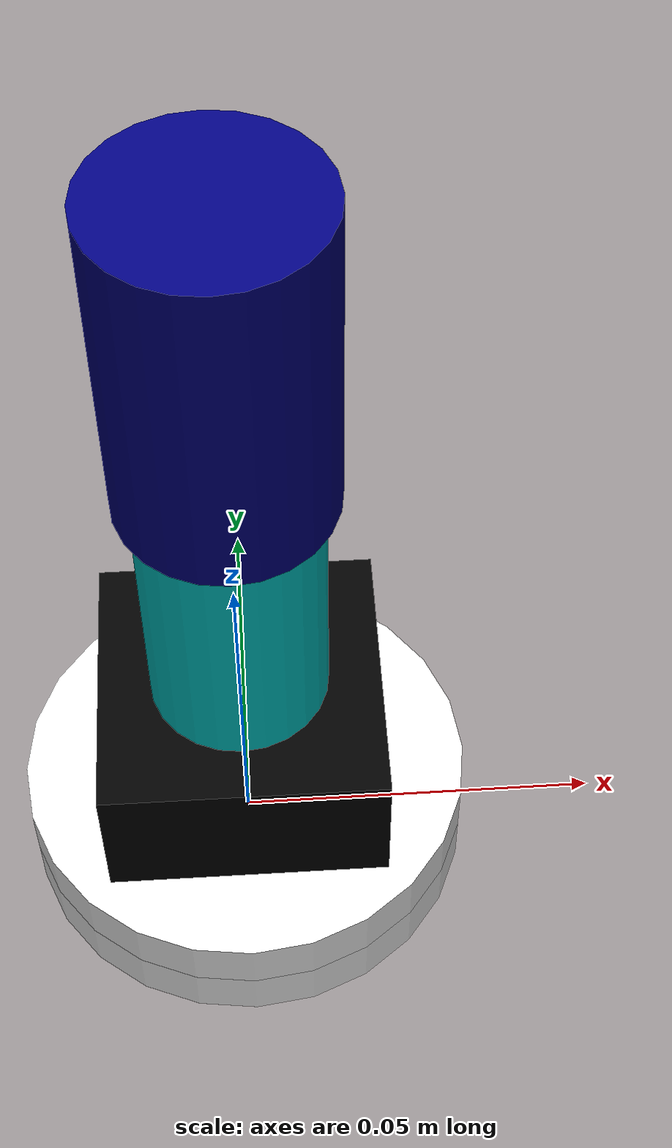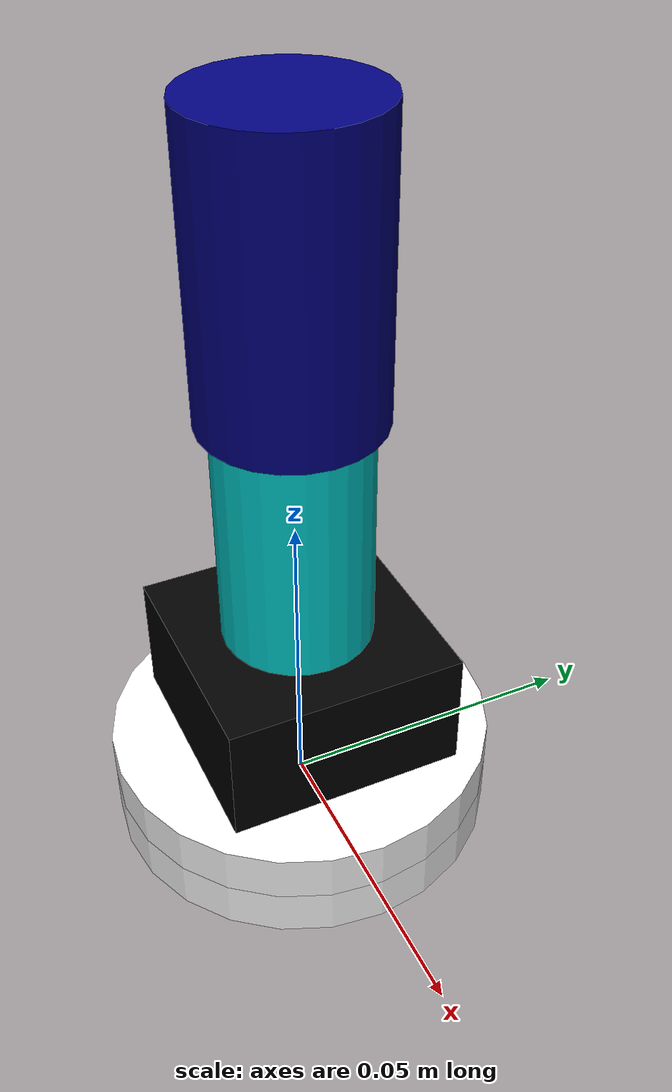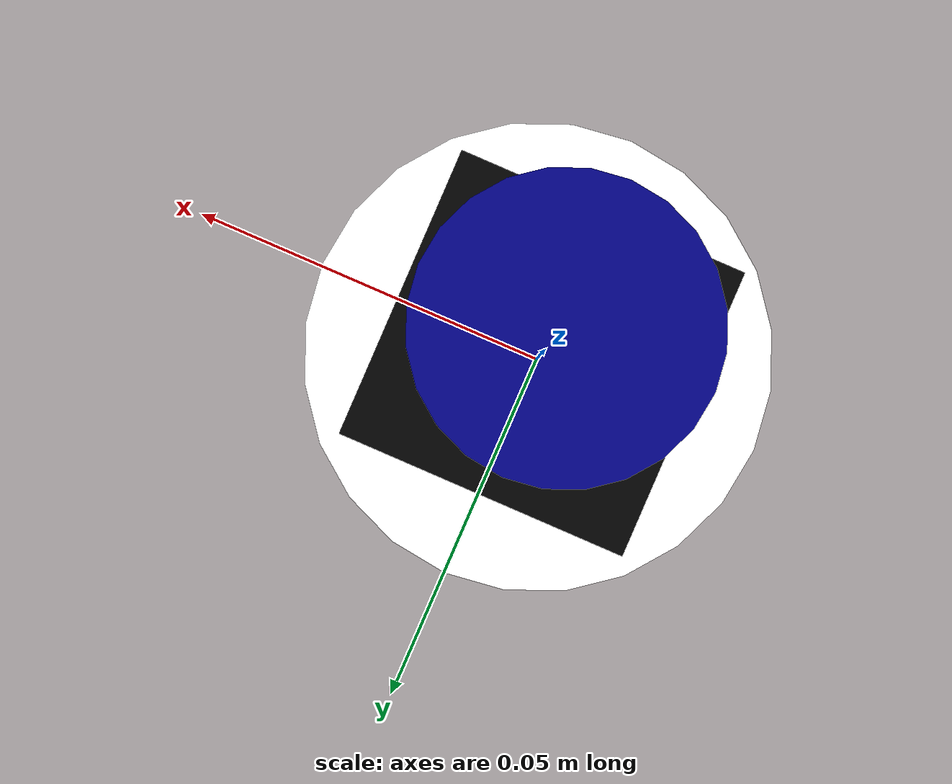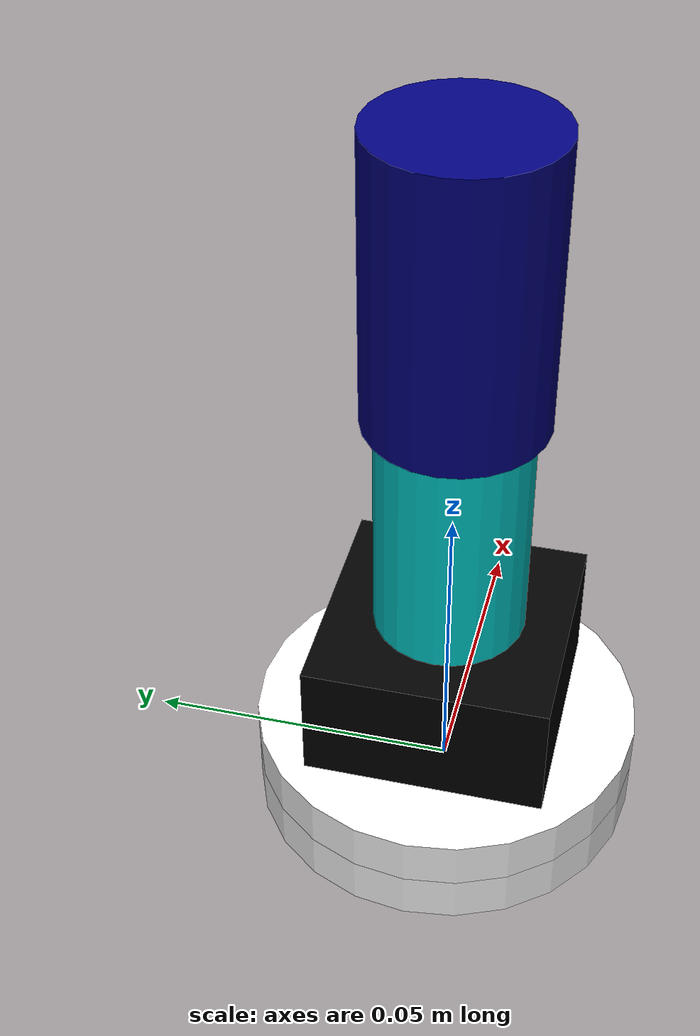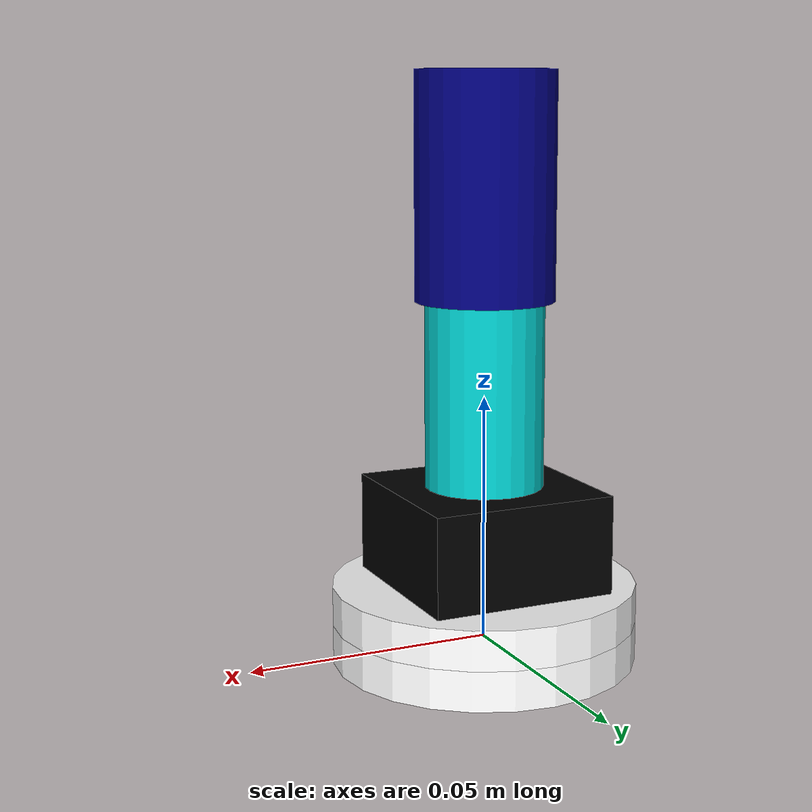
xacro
<?xml version="1.0" encoding="UTF-8"?>
<robot name="actuator_large">
  <link name="base_plexi">
    <visual>
    <origin xyz="0 0 0" rpy="0 0 0"/>
      <geometry>
        <cylinder length="0.008" radius="0.031"/>
      </geometry>
      <material name="white">
        <color rgba="1 1 1 1"/>
      </material>
    </visual>
     <collision>
      <geometry>
         <cylinder length="0.008" radius="0.031"/>
      </geometry>
    </collision>
  </link>
  <link name="base_plexi_2">
    <visual>
    <origin xyz="0 0 0" rpy="0 0 0"/>
      <geometry>
        <cylinder length="0.008" radius="0.031"/>
      </geometry>
      <material name="white">
        <color rgba="1 1 1 1"/>
      </material>
    </visual>
     <collision>
      <geometry>
         <cylinder length="0.008" radius="0.031"/>
      </geometry>
    </collision>
  </link>
  <link name="venturi">
  <origin xyz="0 0 0" rpy="0 0 0"/>
    <visual>
      <geometry>
        <box size="0.038 0.038 .020"/>
      </geometry>
       <material name="black">
        <color rgba="0 0 0 1"/>
      </material>
    </visual>
     <collision>
      <geometry>
        <box size="0.038 0.038 .020"/>
      </geometry>
    </collision>
  </link>
  <link name="adaptateur">
  <origin xyz="0 0 0" rpy="0 0 0"/>
    <visual>
      <geometry>
        <cylinder length="0.040" radius="0.012"/>
      </geometry>
      <material name="yellow">
        <color rgba="0 .8 .8 1"/>
      </material>
    </visual>
     <collision>
      <geometry>
          <cylinder length="0.040" radius="0.012"/>
      </geometry>
    </collision>
  </link>
   <link name="ventouse">
       <origin xyz="0 0 0" rpy="0 0 0"/>
    <visual>
      <geometry>
        <cylinder length="0.045" radius="0.014"/>
      </geometry>
      <material name="blue">
        <color rgba="0 0 .5 1"/>
      </material>
    </visual>
     <collision>
      <geometry>
        <cylinder length="0.045" radius="0.014"/>
      </geometry>
    </collision>
  </link>
  <joint name="base_plexi_to_venturi" type="fixed">
    <parent link="base_plexi"/>
    <child link="base_plexi_2"/>
    <origin xyz="0 0 0.008 "/>
  </joint>
  <joint name="base_plexi_2_to_venturi" type="fixed">
    <parent link="base_plexi_2"/>
    <child link="venturi"/>
    <origin xyz="0 0 0.014 "/>
  </joint>
    <joint name="venturi_to_adapteur" type="fixed">
    <parent link="venturi"/>
    <child link="adaptateur"/>
    <origin xyz="0 0. 0.028 "/>
  </joint>
  <joint name="adapteur_to_ventouse" type="fixed">
    <parent link="adaptateur"/>
    <child link="ventouse"/>
    <origin xyz="0 0. 0.042 "/>
      </joint>
</robot>
